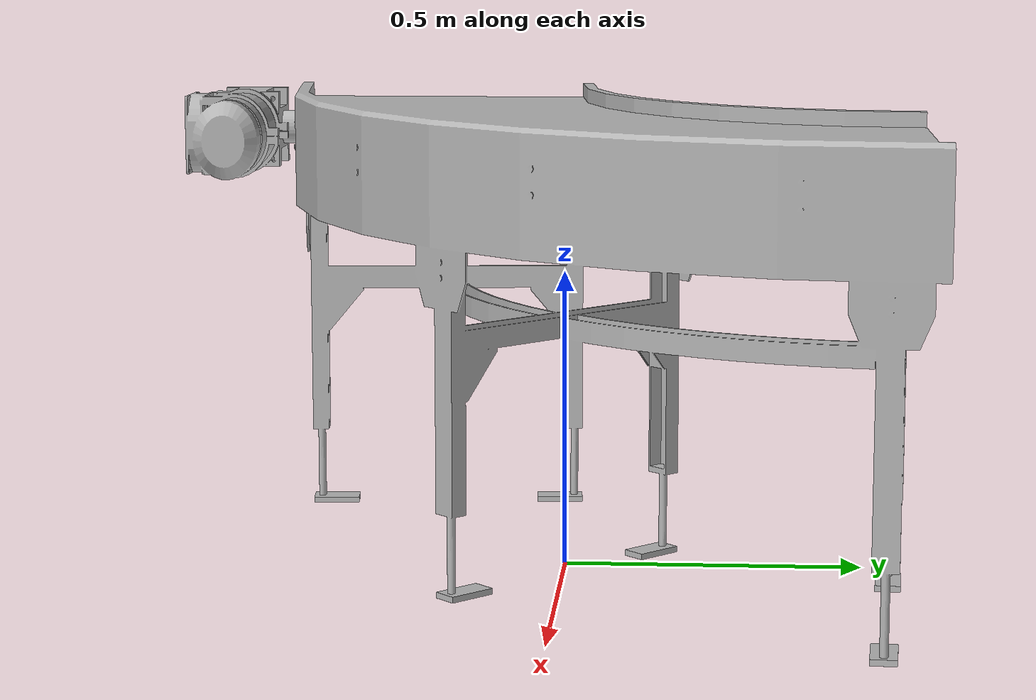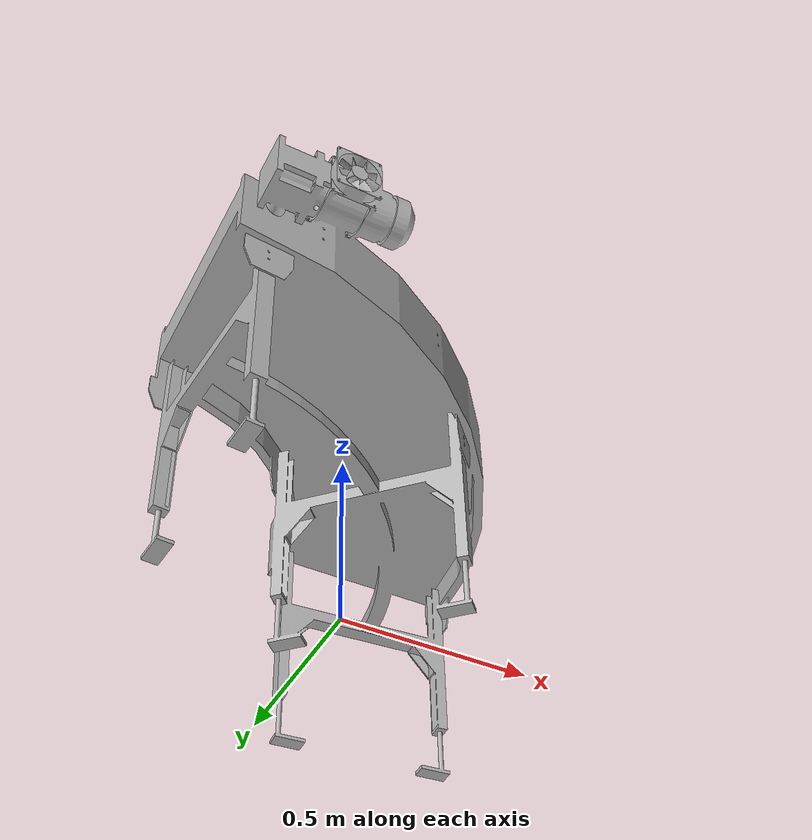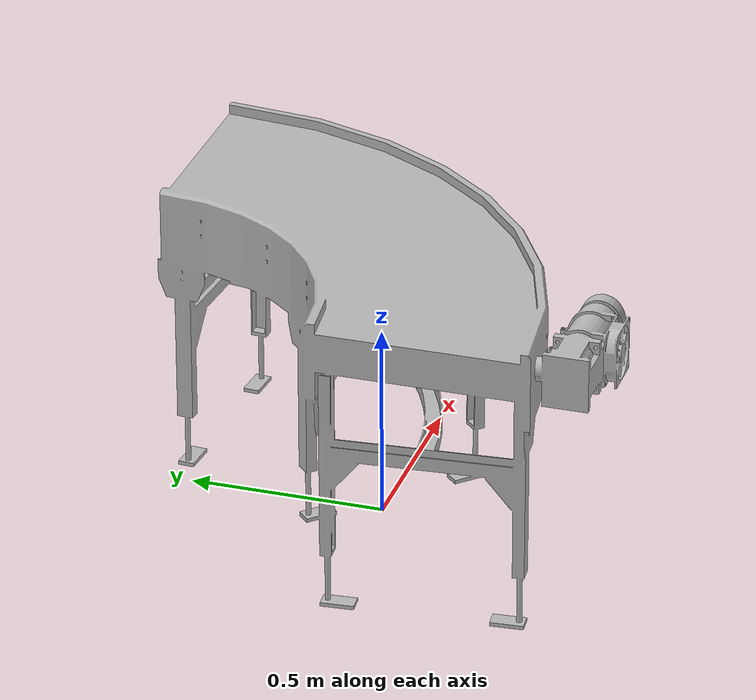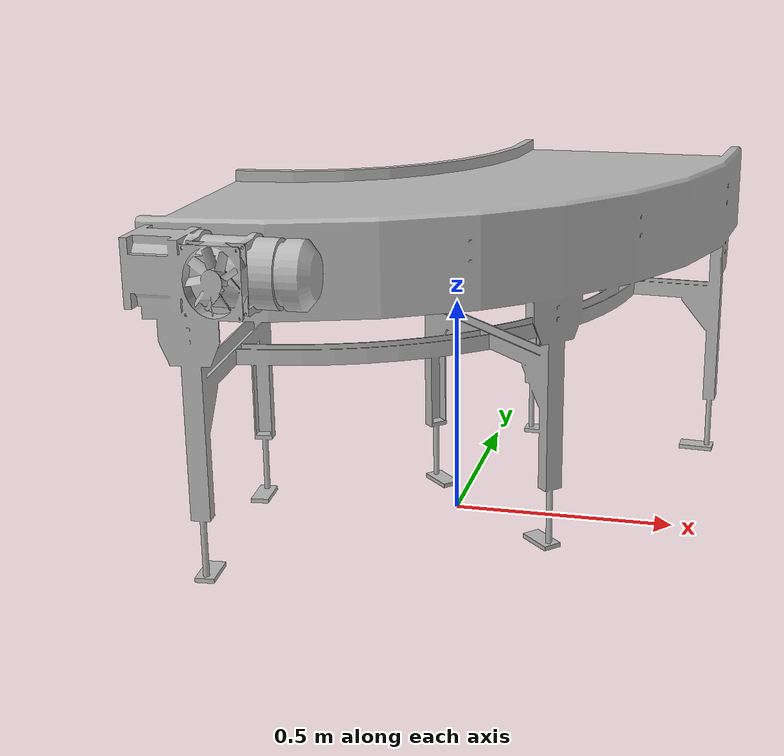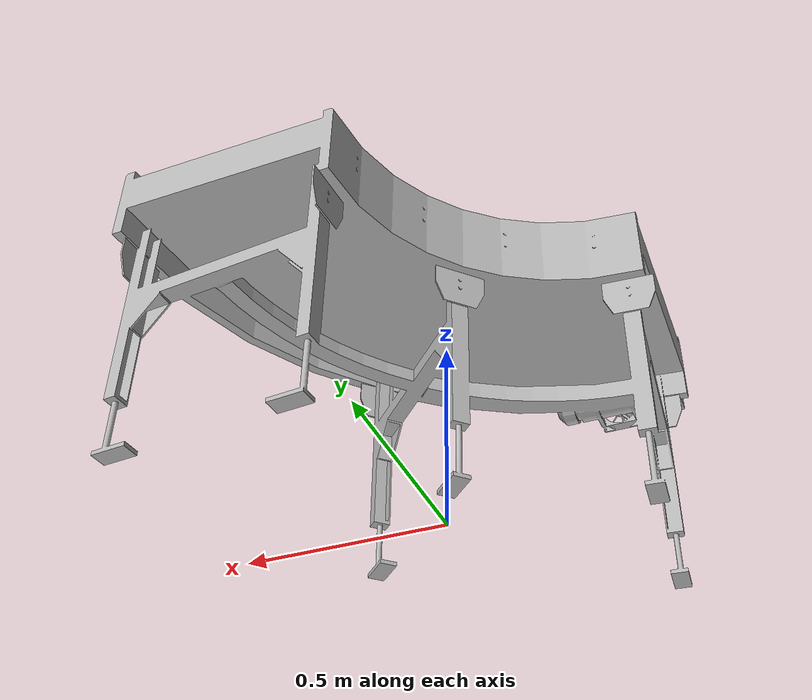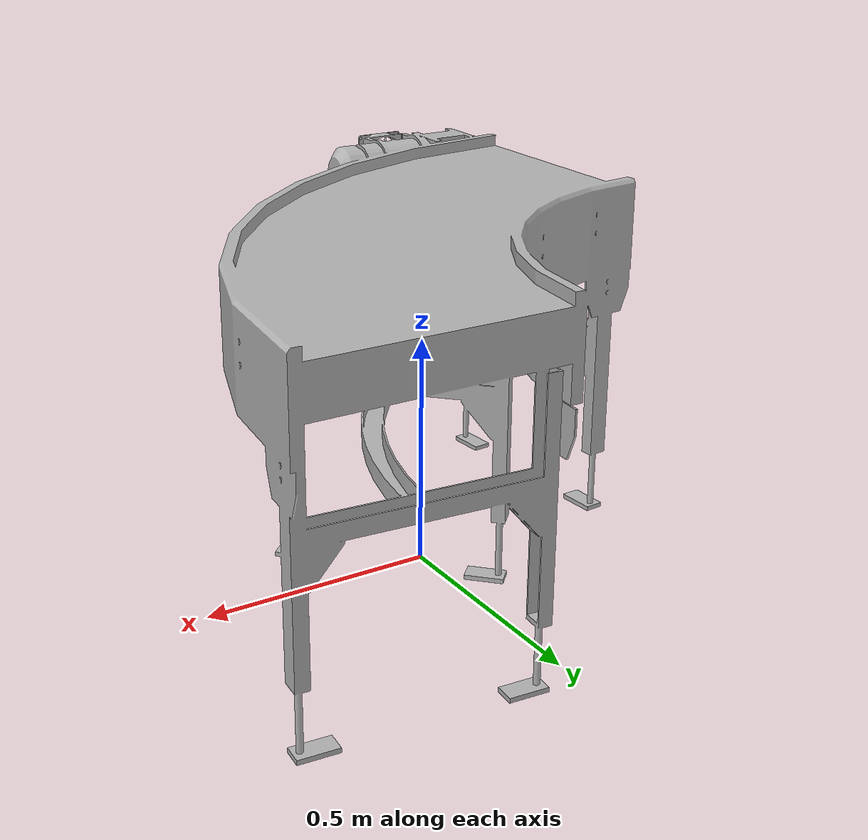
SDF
<?xml version="1.0" ?>
<sdf version="1.6">
  <model name="left_1m">
    <static>false</static>
    <link name="link">
      <collision name="collision">
        <!-- Offset applied here to align feet to ground -->
        <pose>0 0 0.597456 0 0 0</pose>
        <geometry>
          <mesh>
            <uri>model://left_1m/meshes/col_left_1m.obj</uri>
            <scale>1 1 1</scale>
          </mesh>
        </geometry>
      </collision>

      <visual name="visual">
        <!-- Offset applied here to align feet to ground -->
        <pose>0 0 0.597456 0 0 0</pose>
        <geometry>
          <mesh>
            <uri>model://left_1m/meshes/left_1m.obj</uri>
            <scale>1 1 1</scale>
          </mesh>
        </geometry>
      </visual>
    </link>
  </model>
</sdf>
